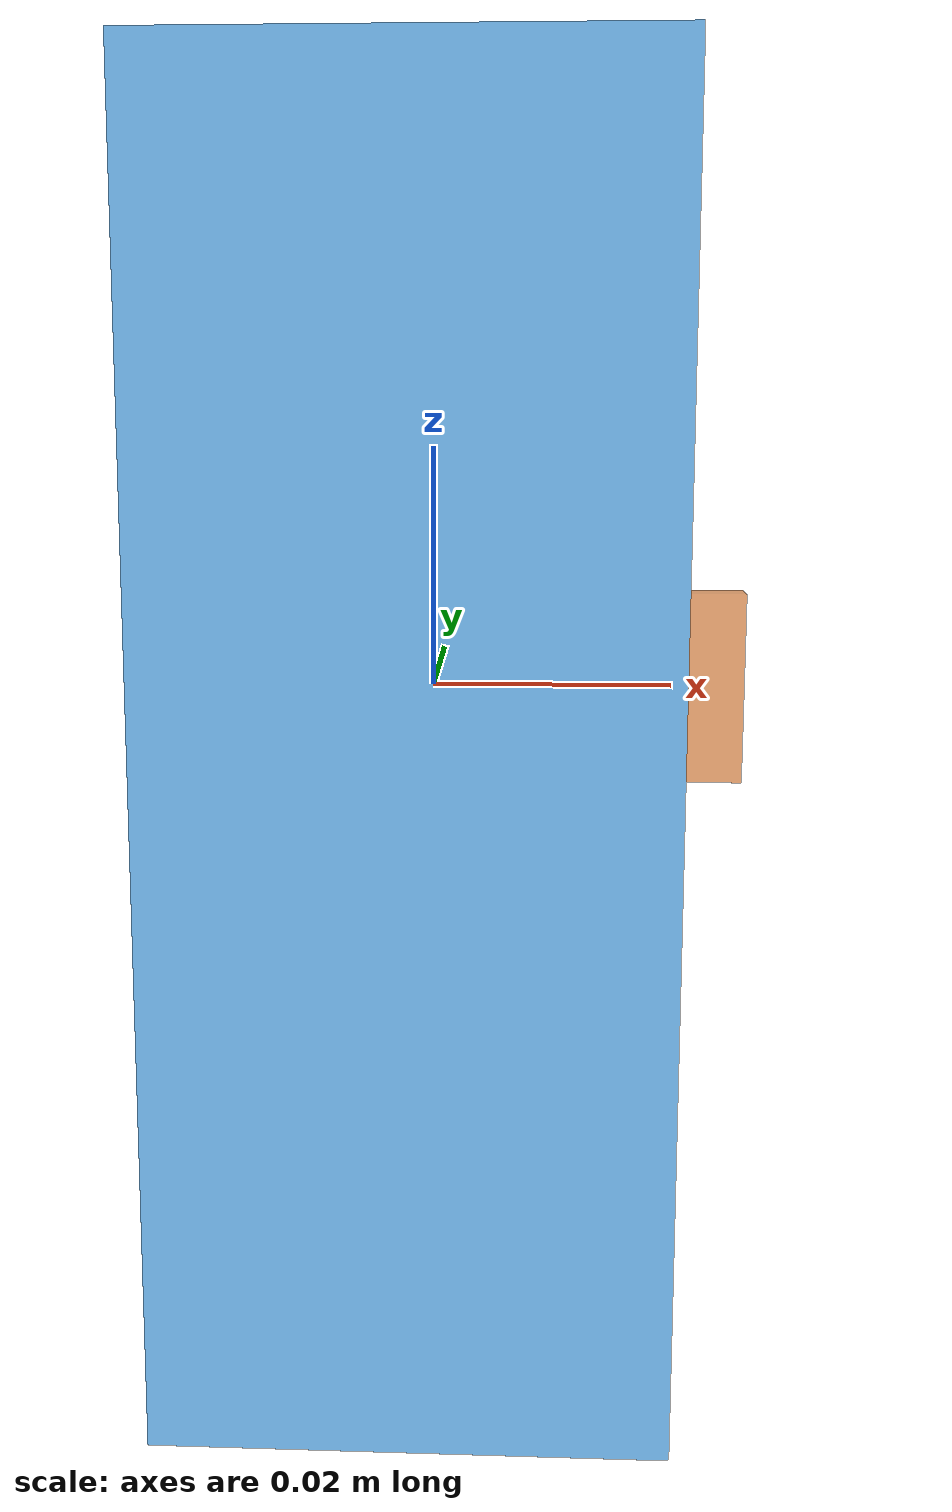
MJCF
<mujoco model="boxbox accuracy case 1">
  <option gravity="0 0 0" boxbox="new"/>

  <worldbody>
    <body name="boxA">
      <freejoint/>
      <geom type="box" size="0.018 0.038 0.047" rgba=".2 .6 .9 .7"/>
    </body>
    <body name="boxB">
      <freejoint/>
      <geom type="box" size="0.026 0.0014 0.008" rgba=".9 .5 .2 .7"/>
    </body>
  </worldbody>

  <keyframe>
    <key name="failure" qpos="0 0 0  0.34422977849321568 0.38419095993778196 0.050988469265927795 0.85516275755116633  -0.026807978424517521 0.030426380849620339 0.0049909343726419397  0.36061702670907897 0.72524337959601903 -0.47249182221256691 -0.34746061408726026"/>
  </keyframe>
</mujoco>
